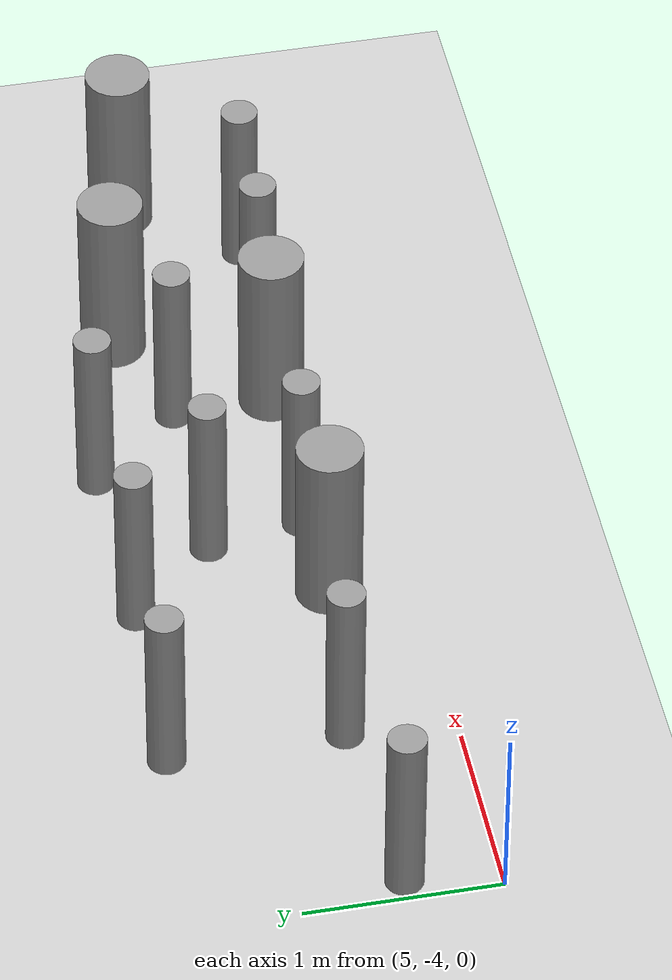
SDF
<sdf version="1.6">
 <world name="default">
  <model name="ground_plane">
   <static>1</static>
   <link name="link">
    <collision name="collision">
     <geometry><plane><normal>0 0 1</normal><size>100 100</size></plane></geometry>
     <surface><friction><ode><mu>100</mu><mu2>50</mu2></ode></friction></surface>
    </collision>
    <visual name="visual">
     <cast_shadows>0</cast_shadows>
     <geometry><plane><normal>0 0 1</normal><size>100 100</size></plane></geometry>
     <material>
      <script><uri>file://media/materials/scripts/gazebo.material</uri><name>Gazebo/Grey</name></script>
     </material>
    </visual>
   </link>
  </model>
  <model name="cyl_wall_clone_clone_0">
   <link name="link_0">
    <pose>-2.73893 -0.366465 0 0 -0 0</pose>
    <inertial>
     <mass>0.0374993</mass>
     <inertia>
      <ixx>0.00321281</ixx>
      <ixy>0</ixy>
      <ixz>0</ixz>
      <iyy>0.00321281</iyy>
      <iyz>0</iyz>
      <izz>0.000175774</izz>
     </inertia>
    </inertial>
    <visual name="visual">
     <geometry><cylinder><radius>0.0968661</radius><length>1</length></cylinder></geometry>
     <material>
      <lighting>1</lighting>
      <script><uri>file://media/materials/scripts/gazebo.material</uri><name>Gazebo/Grey</name></script>
      <ambient>0.3 0.3 0.3 1</ambient>
      <diffuse>0.7 0.7 0.7 1</diffuse>
      <specular>0.01 0.01 0.01 1</specular>
      <emissive>0 0 0 1</emissive>
     </material>
    </visual>
    <collision name="collision">
     <geometry><cylinder><radius>0.096866</radius><length>1</length></cylinder></geometry>
     <surface>
      <friction>
       <ode><mu>1</mu><mu2>1</mu2><fdir1>0 0 0</fdir1><slip1>0</slip1><slip2>0</slip2></ode>
       <torsional>
        <coefficient>1</coefficient>
        <patch_radius>0</patch_radius>
        <surface_radius>0</surface_radius>
        <use_patch_radius>1</use_patch_radius>
        <ode><slip>0</slip></ode>
       </torsional>
      </friction>
      <bounce><restitution_coefficient>0</restitution_coefficient><threshold>1e+06</threshold></bounce>
      <contact>
       <collide_without_contact>0</collide_without_contact>
       <collide_without_contact_bitmask>1</collide_without_contact_bitmask>
       <collide_bitmask>1</collide_bitmask>
       <ode>
        <soft_cfm>0</soft_cfm>
        <soft_erp>0.2</soft_erp>
        <kp>1e+13</kp>
        <kd>1</kd>
        <max_vel>0.01</max_vel>
        <min_depth>0</min_depth>
       </ode>
       <bullet>
        <split_impulse>1</split_impulse>
        <split_impulse_penetration_threshold>-0.01</split_impulse_penetration_threshold>
        <soft_cfm>0</soft_cfm>
        <soft_erp>0.2</soft_erp>
        <kp>1e+13</kp>
        <kd>1</kd>
       </bullet>
      </contact>
     </surface>
    </collision>
   </link>
   <link name="link_0_clone">
    <pose>-1.73893 0.61877 0 0 -0 0</pose>
    <inertial>
     <mass>0.0374993</mass>
     <inertia>
      <ixx>0.00321281</ixx>
      <ixy>0</ixy>
      <ixz>0</ixz>
      <iyy>0.00321281</iyy>
      <iyz>0</iyz>
      <izz>0.000175774</izz>
     </inertia>
    </inertial>
    <visual name="visual">
     <geometry><cylinder><radius>0.0968661</radius><length>1</length></cylinder></geometry>
     <material>
      <lighting>1</lighting>
      <script><uri>file://media/materials/scripts/gazebo.material</uri><name>Gazebo/Grey</name></script>
      <ambient>0.3 0.3 0.3 1</ambient>
      <diffuse>0.7 0.7 0.7 1</diffuse>
      <specular>0.01 0.01 0.01 1</specular>
      <emissive>0 0 0 1</emissive>
      <shader type="pixel"/>
     </material>
    </visual>
    <collision name="collision">
     <geometry><cylinder><radius>0.096866</radius><length>1</length></cylinder></geometry>
     <surface>
      <friction>
       <ode><mu>1</mu><mu2>1</mu2><fdir1>0 0 0</fdir1><slip1>0</slip1><slip2>0</slip2></ode>
       <torsional>
        <coefficient>1</coefficient>
        <patch_radius>0</patch_radius>
        <surface_radius>0</surface_radius>
        <use_patch_radius>1</use_patch_radius>
        <ode><slip>0</slip></ode>
       </torsional>
      </friction>
      <bounce><restitution_coefficient>0</restitution_coefficient><threshold>1e+06</threshold></bounce>
      <contact>
       <collide_without_contact>0</collide_without_contact>
       <collide_without_contact_bitmask>1</collide_without_contact_bitmask>
       <collide_bitmask>1</collide_bitmask>
       <ode>
        <soft_cfm>0</soft_cfm>
        <soft_erp>0.2</soft_erp>
        <kp>1e+13</kp>
        <kd>1</kd>
        <max_vel>0.01</max_vel>
        <min_depth>0</min_depth>
       </ode>
       <bullet>
        <split_impulse>1</split_impulse>
        <split_impulse_penetration_threshold>-0.01</split_impulse_penetration_threshold>
        <soft_cfm>0</soft_cfm>
        <soft_erp>0.2</soft_erp>
        <kp>1e+13</kp>
        <kd>1</kd>
       </bullet>
      </contact>
     </surface>
    </collision>
   </link>
   <link name="link_0_clone_clone">
    <pose>-0.327073 0.143919 0 0 -0 0</pose>
    <inertial>
     <mass>0.0374993</mass>
     <inertia>
      <ixx>0.00321281</ixx>
      <ixy>0</ixy>
      <ixz>0</ixz>
      <iyy>0.00321281</iyy>
      <iyz>0</iyz>
      <izz>0.000175774</izz>
     </inertia>
    </inertial>
    <visual name="visual">
     <geometry><cylinder><radius>0.0968661</radius><length>1</length></cylinder></geometry>
     <material>
      <lighting>1</lighting>
      <script><uri>file://media/materials/scripts/gazebo.material</uri><name>Gazebo/Grey</name></script>
      <ambient>0.3 0.3 0.3 1</ambient>
      <diffuse>0.7 0.7 0.7 1</diffuse>
      <specular>0.01 0.01 0.01 1</specular>
      <emissive>0 0 0 1</emissive>
      <shader type="pixel"/>
     </material>
    </visual>
    <collision name="collision">
     <geometry><cylinder><radius>0.096866</radius><length>1</length></cylinder></geometry>
     <surface>
      <friction>
       <ode><mu>1</mu><mu2>1</mu2><fdir1>0 0 0</fdir1><slip1>0</slip1><slip2>0</slip2></ode>
       <torsional>
        <coefficient>1</coefficient>
        <patch_radius>0</patch_radius>
        <surface_radius>0</surface_radius>
        <use_patch_radius>1</use_patch_radius>
        <ode><slip>0</slip></ode>
       </torsional>
      </friction>
      <bounce><restitution_coefficient>0</restitution_coefficient><threshold>1e+06</threshold></bounce>
      <contact>
       <collide_without_contact>0</collide_without_contact>
       <collide_without_contact_bitmask>1</collide_without_contact_bitmask>
       <collide_bitmask>1</collide_bitmask>
       <ode>
        <soft_cfm>0</soft_cfm>
        <soft_erp>0.2</soft_erp>
        <kp>1e+13</kp>
        <kd>1</kd>
        <max_vel>0.01</max_vel>
        <min_depth>0</min_depth>
       </ode>
       <bullet>
        <split_impulse>1</split_impulse>
        <split_impulse_penetration_threshold>-0.01</split_impulse_penetration_threshold>
        <soft_cfm>0</soft_cfm>
        <soft_erp>0.2</soft_erp>
        <kp>1e+13</kp>
        <kd>1</kd>
       </bullet>
      </contact>
     </surface>
    </collision>
   </link>
   <link name="link_0_clone_clone_0">
    <pose>1.26107 -0.419359 0 0 -0 0</pose>
    <inertial>
     <mass>0.0374993</mass>
     <inertia>
      <ixx>0.00321281</ixx>
      <ixy>0</ixy>
      <ixz>0</ixz>
      <iyy>0.00321281</iyy>
      <iyz>0</iyz>
      <izz>0.000175774</izz>
     </inertia>
    </inertial>
    <visual name="visual">
     <geometry><cylinder><radius>0.0968661</radius><length>1</length></cylinder></geometry>
     <material>
      <lighting>1</lighting>
      <script><uri>file://media/materials/scripts/gazebo.material</uri><name>Gazebo/Grey</name></script>
      <ambient>0.3 0.3 0.3 1</ambient>
      <diffuse>0.7 0.7 0.7 1</diffuse>
      <specular>0.01 0.01 0.01 1</specular>
      <emissive>0 0 0 1</emissive>
      <shader type="pixel"/>
     </material>
    </visual>
    <collision name="collision">
     <geometry><cylinder><radius>0.096866</radius><length>1</length></cylinder></geometry>
     <surface>
      <friction>
       <ode><mu>1</mu><mu2>1</mu2><fdir1>0 0 0</fdir1><slip1>0</slip1><slip2>0</slip2></ode>
       <torsional>
        <coefficient>1</coefficient>
        <patch_radius>0</patch_radius>
        <surface_radius>0</surface_radius>
        <use_patch_radius>1</use_patch_radius>
        <ode><slip>0</slip></ode>
       </torsional>
      </friction>
      <bounce><restitution_coefficient>0</restitution_coefficient><threshold>1e+06</threshold></bounce>
      <contact>
       <collide_without_contact>0</collide_without_contact>
       <collide_without_contact_bitmask>1</collide_without_contact_bitmask>
       <collide_bitmask>1</collide_bitmask>
       <ode>
        <soft_cfm>0</soft_cfm>
        <soft_erp>0.2</soft_erp>
        <kp>1e+13</kp>
        <kd>1</kd>
        <max_vel>0.01</max_vel>
        <min_depth>0</min_depth>
       </ode>
       <bullet>
        <split_impulse>1</split_impulse>
        <split_impulse_penetration_threshold>-0.01</split_impulse_penetration_threshold>
        <soft_cfm>0</soft_cfm>
        <soft_erp>0.2</soft_erp>
        <kp>1e+13</kp>
        <kd>1</kd>
       </bullet>
      </contact>
     </surface>
    </collision>
   </link>
   <link name="link_0_clone_clone_1">
    <pose>-1.73893 -0.277168 0 0 -0 0</pose>
    <inertial>
     <mass>0.0374993</mass>
     <inertia>
      <ixx>0.00321281</ixx>
      <ixy>0</ixy>
      <ixz>0</ixz>
      <iyy>0.00321281</iyy>
      <iyz>0</iyz>
      <izz>0.000175774</izz>
     </inertia>
    </inertial>
    <visual name="visual">
     <geometry><cylinder><radius>0.0968661</radius><length>1</length></cylinder></geometry>
     <material>
      <lighting>1</lighting>
      <script><uri>file://media/materials/scripts/gazebo.material</uri><name>Gazebo/Grey</name></script>
      <ambient>0.3 0.3 0.3 1</ambient>
      <diffuse>0.7 0.7 0.7 1</diffuse>
      <specular>0.01 0.01 0.01 1</specular>
      <emissive>0 0 0 1</emissive>
      <shader type="pixel"/>
     </material>
    </visual>
    <collision name="collision">
     <geometry><cylinder><radius>0.096866</radius><length>1</length></cylinder></geometry>
     <surface>
      <friction>
       <ode><mu>1</mu><mu2>1</mu2><fdir1>0 0 0</fdir1><slip1>0</slip1><slip2>0</slip2></ode>
       <torsional>
        <coefficient>1</coefficient>
        <patch_radius>0</patch_radius>
        <surface_radius>0</surface_radius>
        <use_patch_radius>1</use_patch_radius>
        <ode><slip>0</slip></ode>
       </torsional>
      </friction>
      <bounce><restitution_coefficient>0</restitution_coefficient><threshold>1e+06</threshold></bounce>
      <contact>
       <collide_without_contact>0</collide_without_contact>
       <collide_without_contact_bitmask>1</collide_without_contact_bitmask>
       <collide_bitmask>1</collide_bitmask>
       <ode>
        <soft_cfm>0</soft_cfm>
        <soft_erp>0.2</soft_erp>
        <kp>1e+13</kp>
        <kd>1</kd>
        <max_vel>0.01</max_vel>
        <min_depth>0</min_depth>
       </ode>
       <bullet>
        <split_impulse>1</split_impulse>
        <split_impulse_penetration_threshold>-0.01</split_impulse_penetration_threshold>
        <soft_cfm>0</soft_cfm>
        <soft_erp>0.2</soft_erp>
        <kp>1e+13</kp>
        <kd>1</kd>
       </bullet>
      </contact>
     </surface>
    </collision>
   </link>
   <link name="link_0_clone_clone_2">
    <pose>-0.738934 0.593961 0 0 -0 0</pose>
    <inertial>
     <mass>0.0374993</mass>
     <inertia>
      <ixx>0.00321281</ixx>
      <ixy>0</ixy>
      <ixz>0</ixz>
      <iyy>0.00321281</iyy>
      <iyz>0</iyz>
      <izz>0.000175774</izz>
     </inertia>
    </inertial>
    <visual name="visual">
     <geometry><cylinder><radius>0.0968661</radius><length>1</length></cylinder></geometry>
     <material>
      <lighting>1</lighting>
      <script><uri>file://media/materials/scripts/gazebo.material</uri><name>Gazebo/Grey</name></script>
      <ambient>0.3 0.3 0.3 1</ambient>
      <diffuse>0.7 0.7 0.7 1</diffuse>
      <specular>0.01 0.01 0.01 1</specular>
      <emissive>0 0 0 1</emissive>
      <shader type="pixel"/>
     </material>
    </visual>
    <collision name="collision">
     <geometry><cylinder><radius>0.096866</radius><length>1</length></cylinder></geometry>
     <surface>
      <friction>
       <ode><mu>1</mu><mu2>1</mu2><fdir1>0 0 0</fdir1><slip1>0</slip1><slip2>0</slip2></ode>
       <torsional>
        <coefficient>1</coefficient>
        <patch_radius>0</patch_radius>
        <surface_radius>0</surface_radius>
        <use_patch_radius>1</use_patch_radius>
        <ode><slip>0</slip></ode>
       </torsional>
      </friction>
      <bounce><restitution_coefficient>0</restitution_coefficient><threshold>1e+06</threshold></bounce>
      <contact>
       <collide_without_contact>0</collide_without_contact>
       <collide_without_contact_bitmask>1</collide_without_contact_bitmask>
       <collide_bitmask>1</collide_bitmask>
       <ode>
        <soft_cfm>0</soft_cfm>
        <soft_erp>0.2</soft_erp>
        <kp>1e+13</kp>
        <kd>1</kd>
        <max_vel>0.01</max_vel>
        <min_depth>0</min_depth>
       </ode>
       <bullet>
        <split_impulse>1</split_impulse>
        <split_impulse_penetration_threshold>-0.01</split_impulse_penetration_threshold>
        <soft_cfm>0</soft_cfm>
        <soft_erp>0.2</soft_erp>
        <kp>1e+13</kp>
        <kd>1</kd>
       </bullet>
      </contact>
     </surface>
    </collision>
   </link>
   <link name="link_0_clone_clone_3">
    <pose>0.261066 0.624849 0 0 -0 0</pose>
    <inertial>
     <mass>0.0374993</mass>
     <inertia>
      <ixx>0.00321281</ixx>
      <ixy>0</ixy>
      <ixz>0</ixz>
      <iyy>0.00321281</iyy>
      <iyz>0</iyz>
      <izz>0.000175774</izz>
     </inertia>
    </inertial>
    <visual name="visual">
     <geometry><cylinder><radius>0.0968661</radius><length>1</length></cylinder></geometry>
     <material>
      <lighting>1</lighting>
      <script><uri>file://media/materials/scripts/gazebo.material</uri><name>Gazebo/Grey</name></script>
      <ambient>0.3 0.3 0.3 1</ambient>
      <diffuse>0.7 0.7 0.7 1</diffuse>
      <specular>0.01 0.01 0.01 1</specular>
      <emissive>0 0 0 1</emissive>
      <shader type="pixel"/>
     </material>
    </visual>
    <collision name="collision">
     <geometry><cylinder><radius>0.096866</radius><length>1</length></cylinder></geometry>
     <surface>
      <friction>
       <ode><mu>1</mu><mu2>1</mu2><fdir1>0 0 0</fdir1><slip1>0</slip1><slip2>0</slip2></ode>
       <torsional>
        <coefficient>1</coefficient>
        <patch_radius>0</patch_radius>
        <surface_radius>0</surface_radius>
        <use_patch_radius>1</use_patch_radius>
        <ode><slip>0</slip></ode>
       </torsional>
      </friction>
      <bounce><restitution_coefficient>0</restitution_coefficient><threshold>1e+06</threshold></bounce>
      <contact>
       <collide_without_contact>0</collide_without_contact>
       <collide_without_contact_bitmask>1</collide_without_contact_bitmask>
       <collide_bitmask>1</collide_bitmask>
       <ode>
        <soft_cfm>0</soft_cfm>
        <soft_erp>0.2</soft_erp>
        <kp>1e+13</kp>
        <kd>1</kd>
        <max_vel>0.01</max_vel>
        <min_depth>0</min_depth>
       </ode>
       <bullet>
        <split_impulse>1</split_impulse>
        <split_impulse_penetration_threshold>-0.01</split_impulse_penetration_threshold>
        <soft_cfm>0</soft_cfm>
        <soft_erp>0.2</soft_erp>
        <kp>1e+13</kp>
        <kd>1</kd>
       </bullet>
      </contact>
     </surface>
    </collision>
   </link>
   <link name="link_0_clone_clone_4">
    <pose>-0.239049 -0.353105 0 0 -0 0</pose>
    <inertial>
     <mass>0.0374993</mass>
     <inertia>
      <ixx>0.00321281</ixx>
      <ixy>0</ixy>
      <ixz>0</ixz>
      <iyy>0.00321281</iyy>
      <iyz>0</iyz>
      <izz>0.000175774</izz>
     </inertia>
    </inertial>
    <visual name="visual">
     <geometry><cylinder><radius>0.0968661</radius><length>1</length></cylinder></geometry>
     <material>
      <lighting>1</lighting>
      <script><uri>file://media/materials/scripts/gazebo.material</uri><name>Gazebo/Grey</name></script>
      <ambient>0.3 0.3 0.3 1</ambient>
      <diffuse>0.7 0.7 0.7 1</diffuse>
      <specular>0.01 0.01 0.01 1</specular>
      <emissive>0 0 0 1</emissive>
      <shader type="pixel"/>
     </material>
    </visual>
    <collision name="collision">
     <geometry><cylinder><radius>0.096866</radius><length>1</length></cylinder></geometry>
     <surface>
      <friction>
       <ode><mu>1</mu><mu2>1</mu2><fdir1>0 0 0</fdir1><slip1>0</slip1><slip2>0</slip2></ode>
       <torsional>
        <coefficient>1</coefficient>
        <patch_radius>0</patch_radius>
        <surface_radius>0</surface_radius>
        <use_patch_radius>1</use_patch_radius>
        <ode><slip>0</slip></ode>
       </torsional>
      </friction>
      <bounce><restitution_coefficient>0</restitution_coefficient><threshold>1e+06</threshold></bounce>
      <contact>
       <collide_without_contact>0</collide_without_contact>
       <collide_without_contact_bitmask>1</collide_without_contact_bitmask>
       <collide_bitmask>1</collide_bitmask>
       <ode>
        <soft_cfm>0</soft_cfm>
        <soft_erp>0.2</soft_erp>
        <kp>1e+13</kp>
        <kd>1</kd>
        <max_vel>0.01</max_vel>
        <min_depth>0</min_depth>
       </ode>
       <bullet>
        <split_impulse>1</split_impulse>
        <split_impulse_penetration_threshold>-0.01</split_impulse_penetration_threshold>
        <soft_cfm>0</soft_cfm>
        <soft_erp>0.2</soft_erp>
        <kp>1e+13</kp>
        <kd>1</kd>
       </bullet>
      </contact>
     </surface>
    </collision>
   </link>
   <link name="link_0_clone_clone_5">
    <pose>0.672792 0.143919 0 0 -0 0</pose>
    <inertial>
     <mass>0.0374993</mass>
     <inertia>
      <ixx>0.00321281</ixx>
      <ixy>0</ixy>
      <ixz>0</ixz>
      <iyy>0.00321281</iyy>
      <iyz>0</iyz>
      <izz>0.000175774</izz>
     </inertia>
    </inertial>
    <visual name="visual">
     <geometry><cylinder><radius>0.0968661</radius><length>1</length></cylinder></geometry>
     <material>
      <lighting>1</lighting>
      <script><uri>file://media/materials/scripts/gazebo.material</uri><name>Gazebo/Grey</name></script>
      <ambient>0.3 0.3 0.3 1</ambient>
      <diffuse>0.7 0.7 0.7 1</diffuse>
      <specular>0.01 0.01 0.01 1</specular>
      <emissive>0 0 0 1</emissive>
      <shader type="pixel"/>
     </material>
    </visual>
    <collision name="collision">
     <geometry><cylinder><radius>0.096866</radius><length>1</length></cylinder></geometry>
     <surface>
      <friction>
       <ode><mu>1</mu><mu2>1</mu2><fdir1>0 0 0</fdir1><slip1>0</slip1><slip2>0</slip2></ode>
       <torsional>
        <coefficient>1</coefficient>
        <patch_radius>0</patch_radius>
        <surface_radius>0</surface_radius>
        <use_patch_radius>1</use_patch_radius>
        <ode><slip>0</slip></ode>
       </torsional>
      </friction>
      <bounce><restitution_coefficient>0</restitution_coefficient><threshold>1e+06</threshold></bounce>
      <contact>
       <collide_without_contact>0</collide_without_contact>
       <collide_without_contact_bitmask>1</collide_without_contact_bitmask>
       <collide_bitmask>1</collide_bitmask>
       <ode>
        <soft_cfm>0</soft_cfm>
        <soft_erp>0.2</soft_erp>
        <kp>1e+13</kp>
        <kd>1</kd>
        <max_vel>0.01</max_vel>
        <min_depth>0</min_depth>
       </ode>
       <bullet>
        <split_impulse>1</split_impulse>
        <split_impulse_penetration_threshold>-0.01</split_impulse_penetration_threshold>
        <soft_cfm>0</soft_cfm>
        <soft_erp>0.2</soft_erp>
        <kp>1e+13</kp>
        <kd>1</kd>
       </bullet>
      </contact>
     </surface>
    </collision>
   </link>
   <link name="link_0_clone_clone_6">
    <pose>1.84596 -0.433423 0 0 -0 0</pose>
    <inertial>
     <mass>0.0374993</mass>
     <inertia>
      <ixx>0.00321281</ixx>
      <ixy>0</ixy>
      <ixz>0</ixz>
      <iyy>0.00321281</iyy>
      <iyz>0</iyz>
      <izz>0.000175774</izz>
     </inertia>
    </inertial>
    <visual name="visual">
     <geometry><cylinder><radius>0.0968661</radius><length>1</length></cylinder></geometry>
     <material>
      <lighting>1</lighting>
      <script><uri>file://media/materials/scripts/gazebo.material</uri><name>Gazebo/Grey</name></script>
      <ambient>0.3 0.3 0.3 1</ambient>
      <diffuse>0.7 0.7 0.7 1</diffuse>
      <specular>0.01 0.01 0.01 1</specular>
      <emissive>0 0 0 1</emissive>
      <shader type="pixel"/>
     </material>
    </visual>
    <collision name="collision">
     <geometry><cylinder><radius>0.096866</radius><length>1</length></cylinder></geometry>
     <surface>
      <friction>
       <ode><mu>1</mu><mu2>1</mu2><fdir1>0 0 0</fdir1><slip1>0</slip1><slip2>0</slip2></ode>
       <torsional>
        <coefficient>1</coefficient>
        <patch_radius>0</patch_radius>
        <surface_radius>0</surface_radius>
        <use_patch_radius>1</use_patch_radius>
        <ode><slip>0</slip></ode>
       </torsional>
      </friction>
      <bounce><restitution_coefficient>0</restitution_coefficient><threshold>1e+06</threshold></bounce>
      <contact>
       <collide_without_contact>0</collide_without_contact>
       <collide_without_contact_bitmask>1</collide_without_contact_bitmask>
       <collide_bitmask>1</collide_bitmask>
       <ode>
        <soft_cfm>0</soft_cfm>
        <soft_erp>0.2</soft_erp>
        <kp>1e+13</kp>
        <kd>1</kd>
        <max_vel>0.01</max_vel>
        <min_depth>0</min_depth>
       </ode>
       <bullet>
        <split_impulse>1</split_impulse>
        <split_impulse_penetration_threshold>-0.01</split_impulse_penetration_threshold>
        <soft_cfm>0</soft_cfm>
        <soft_erp>0.2</soft_erp>
        <kp>1e+13</kp>
        <kd>1</kd>
       </bullet>
      </contact>
     </surface>
    </collision>
   </link>
   <link name="link_1">
    <pose>-0.738934 -0.397931 0 0 -0 0</pose>
    <inertial>
     <mass>0.117398</mass>
     <inertia>
      <ixx>0.0106445</ixx>
      <ixy>0</ixy>
      <ixz>0</ixz>
      <iyy>0.0106445</iyy>
      <iyz>0</iyz>
      <izz>0.00172278</izz>
     </inertia>
    </inertial>
    <visual name="visual">
     <geometry><cylinder><radius>0.171317</radius><length>1</length></cylinder></geometry>
     <material>
      <lighting>1</lighting>
      <script><uri>file://media/materials/scripts/gazebo.material</uri><name>Gazebo/Grey</name></script>
      <ambient>0.3 0.3 0.3 1</ambient>
      <diffuse>0.7 0.7 0.7 1</diffuse>
      <specular>0.01 0.01 0.01 1</specular>
      <emissive>0 0 0 1</emissive>
     </material>
    </visual>
    <collision name="collision">
     <geometry><cylinder><radius>0.171317</radius><length>1</length></cylinder></geometry>
     <surface>
      <friction>
       <ode><mu>1</mu><mu2>1</mu2><fdir1>0 0 0</fdir1><slip1>0</slip1><slip2>0</slip2></ode>
       <torsional>
        <coefficient>1</coefficient>
        <patch_radius>0</patch_radius>
        <surface_radius>0</surface_radius>
        <use_patch_radius>1</use_patch_radius>
        <ode><slip>0</slip></ode>
       </torsional>
      </friction>
      <bounce><restitution_coefficient>0</restitution_coefficient><threshold>1e+06</threshold></bounce>
      <contact>
       <collide_without_contact>0</collide_without_contact>
       <collide_without_contact_bitmask>1</collide_without_contact_bitmask>
       <collide_bitmask>1</collide_bitmask>
       <ode>
        <soft_cfm>0</soft_cfm>
        <soft_erp>0.2</soft_erp>
        <kp>1e+13</kp>
        <kd>1</kd>
        <max_vel>0.01</max_vel>
        <min_depth>0</min_depth>
       </ode>
       <bullet>
        <split_impulse>1</split_impulse>
        <split_impulse_penetration_threshold>-0.01</split_impulse_penetration_threshold>
        <soft_cfm>0</soft_cfm>
        <soft_erp>0.2</soft_erp>
        <kp>1e+13</kp>
        <kd>1</kd>
       </bullet>
      </contact>
     </surface>
    </collision>
   </link>
   <link name="link_1_clone">
    <pose>0.697784 -0.380861 0 0 -0 0</pose>
    <inertial>
     <mass>0.117398</mass>
     <inertia>
      <ixx>0.0106445</ixx>
      <ixy>0</ixy>
      <ixz>0</ixz>
      <iyy>0.0106445</iyy>
      <iyz>0</iyz>
      <izz>0.00172278</izz>
     </inertia>
    </inertial>
    <visual name="visual">
     <geometry><cylinder><radius>0.171317</radius><length>1</length></cylinder></geometry>
     <material>
      <lighting>1</lighting>
      <script><uri>file://media/materials/scripts/gazebo.material</uri><name>Gazebo/Grey</name></script>
      <ambient>0.3 0.3 0.3 1</ambient>
      <diffuse>0.7 0.7 0.7 1</diffuse>
      <specular>0.01 0.01 0.01 1</specular>
      <emissive>0 0 0 1</emissive>
      <shader type="pixel"/>
     </material>
    </visual>
    <collision name="collision">
     <geometry><cylinder><radius>0.171317</radius><length>1</length></cylinder></geometry>
     <surface>
      <friction>
       <ode><mu>1</mu><mu2>1</mu2><fdir1>0 0 0</fdir1><slip1>0</slip1><slip2>0</slip2></ode>
       <torsional>
        <coefficient>1</coefficient>
        <patch_radius>0</patch_radius>
        <surface_radius>0</surface_radius>
        <use_patch_radius>1</use_patch_radius>
        <ode><slip>0</slip></ode>
       </torsional>
      </friction>
      <bounce><restitution_coefficient>0</restitution_coefficient><threshold>1e+06</threshold></bounce>
      <contact>
       <collide_without_contact>0</collide_without_contact>
       <collide_without_contact_bitmask>1</collide_without_contact_bitmask>
       <collide_bitmask>1</collide_bitmask>
       <ode>
        <soft_cfm>0</soft_cfm>
        <soft_erp>0.2</soft_erp>
        <kp>1e+13</kp>
        <kd>1</kd>
        <max_vel>0.01</max_vel>
        <min_depth>0</min_depth>
       </ode>
       <bullet>
        <split_impulse>1</split_impulse>
        <split_impulse_penetration_threshold>-0.01</split_impulse_penetration_threshold>
        <soft_cfm>0</soft_cfm>
        <soft_erp>0.2</soft_erp>
        <kp>1e+13</kp>
        <kd>1</kd>
       </bullet>
      </contact>
     </surface>
    </collision>
   </link>
   <link name="link_1_clone_0">
    <pose>1.26107 0.358974 0 0 -0 0</pose>
    <inertial>
     <mass>0.117398</mass>
     <inertia>
      <ixx>0.0106445</ixx>
      <ixy>0</ixy>
      <ixz>0</ixz>
      <iyy>0.0106445</iyy>
      <iyz>0</iyz>
      <izz>0.00172278</izz>
     </inertia>
    </inertial>
    <visual name="visual">
     <geometry><cylinder><radius>0.171317</radius><length>1</length></cylinder></geometry>
     <material>
      <lighting>1</lighting>
      <script><uri>file://media/materials/scripts/gazebo.material</uri><name>Gazebo/Grey</name></script>
      <ambient>0.3 0.3 0.3 1</ambient>
      <diffuse>0.7 0.7 0.7 1</diffuse>
      <specular>0.01 0.01 0.01 1</specular>
      <emissive>0 0 0 1</emissive>
      <shader type="pixel"/>
     </material>
    </visual>
    <collision name="collision">
     <geometry><cylinder><radius>0.171317</radius><length>1</length></cylinder></geometry>
     <surface>
      <friction>
       <ode><mu>1</mu><mu2>1</mu2><fdir1>0 0 0</fdir1><slip1>0</slip1><slip2>0</slip2></ode>
       <torsional>
        <coefficient>1</coefficient>
        <patch_radius>0</patch_radius>
        <surface_radius>0</surface_radius>
        <use_patch_radius>1</use_patch_radius>
        <ode><slip>0</slip></ode>
       </torsional>
      </friction>
      <bounce><restitution_coefficient>0</restitution_coefficient><threshold>1e+06</threshold></bounce>
      <contact>
       <collide_without_contact>0</collide_without_contact>
       <collide_without_contact_bitmask>1</collide_without_contact_bitmask>
       <collide_bitmask>1</collide_bitmask>
       <ode>
        <soft_cfm>0</soft_cfm>
        <soft_erp>0.2</soft_erp>
        <kp>1e+13</kp>
        <kd>1</kd>
        <max_vel>0.01</max_vel>
        <min_depth>0</min_depth>
       </ode>
       <bullet>
        <split_impulse>1</split_impulse>
        <split_impulse_penetration_threshold>-0.01</split_impulse_penetration_threshold>
        <soft_cfm>0</soft_cfm>
        <soft_erp>0.2</soft_erp>
        <kp>1e+13</kp>
        <kd>1</kd>
       </bullet>
      </contact>
     </surface>
    </collision>
   </link>
   <link name="link_1_clone_1">
    <pose>2.26107 0.143919 0 0 -0 0</pose>
    <inertial>
     <mass>0.117398</mass>
     <inertia>
      <ixx>0.0106445</ixx>
      <ixy>0</ixy>
      <ixz>0</ixz>
      <iyy>0.0106445</iyy>
      <iyz>0</iyz>
      <izz>0.00172278</izz>
     </inertia>
    </inertial>
    <visual name="visual">
     <geometry><cylinder><radius>0.171317</radius><length>1</length></cylinder></geometry>
     <material>
      <lighting>1</lighting>
      <script><uri>file://media/materials/scripts/gazebo.material</uri><name>Gazebo/Grey</name></script>
      <ambient>0.3 0.3 0.3 1</ambient>
      <diffuse>0.7 0.7 0.7 1</diffuse>
      <specular>0.01 0.01 0.01 1</specular>
      <emissive>0 0 0 1</emissive>
      <shader type="pixel"/>
     </material>
    </visual>
    <collision name="collision">
     <geometry><cylinder><radius>0.171317</radius><length>1</length></cylinder></geometry>
     <surface>
      <friction>
       <ode><mu>1</mu><mu2>1</mu2><fdir1>0 0 0</fdir1><slip1>0</slip1><slip2>0</slip2></ode>
       <torsional>
        <coefficient>1</coefficient>
        <patch_radius>0</patch_radius>
        <surface_radius>0</surface_radius>
        <use_patch_radius>1</use_patch_radius>
        <ode><slip>0</slip></ode>
       </torsional>
      </friction>
      <bounce><restitution_coefficient>0</restitution_coefficient><threshold>1e+06</threshold></bounce>
      <contact>
       <collide_without_contact>0</collide_without_contact>
       <collide_without_contact_bitmask>1</collide_without_contact_bitmask>
       <collide_bitmask>1</collide_bitmask>
       <ode>
        <soft_cfm>0</soft_cfm>
        <soft_erp>0.2</soft_erp>
        <kp>1e+13</kp>
        <kd>1</kd>
        <max_vel>0.01</max_vel>
        <min_depth>0</min_depth>
       </ode>
       <bullet>
        <split_impulse>1</split_impulse>
        <split_impulse_penetration_threshold>-0.01</split_impulse_penetration_threshold>
        <soft_cfm>0</soft_cfm>
        <soft_erp>0.2</soft_erp>
        <kp>1e+13</kp>
        <kd>1</kd>
       </bullet>
      </contact>
     </surface>
    </collision>
   </link>
   <static>1</static>
   <pose>7.85891 -3.15943 0.5 0 -0 0</pose>
  </model>
 </world>
</sdf>
